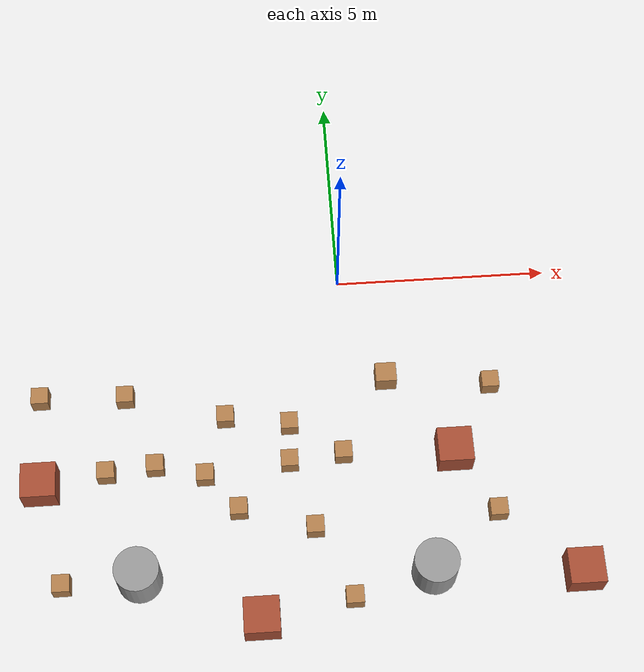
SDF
<sdf version="1.6">
 <world name="default">
  <model name="ground_plane">
   <static>1</static>
   <link name="link">
    <collision name="collision">
     <geometry><plane><normal>0 0 1</normal><size>100 100</size></plane></geometry>
     <surface><friction><ode><mu>100</mu><mu2>50</mu2></ode></friction></surface>
    </collision>
    <visual name="visual">
     <cast_shadows>0</cast_shadows>
     <geometry><plane><normal>0 0 1</normal><size>100 100</size></plane></geometry>
     <material>
      <script><uri>file://media/materials/scripts/gazebo.material</uri><name>Gazebo/White</name></script>
     </material>
    </visual>
   </link>
  </model>
  <model name="Box_12">
   <link name="link">
    <inertial>
     <mass>0.01</mass>
     <inertia>
      <ixx>0.00455697</ixx>
      <ixy>0</ixy>
      <ixz>0</ixz>
      <iyy>0.00475558</iyy>
      <iyz>0</iyz>
      <izz>0.00426137</izz>
     </inertia>
    </inertial>
    <visual name="visual">
     <geometry><box><size>0.483208 0.461193 0.514245</size></box></geometry>
     <material>
      <script><name>Gazebo/WoodFloor</name><uri>file://media/materials/scripts/gazebo.material</uri></script>
      <ambient>0.3 0.3 0.3 1</ambient>
      <diffuse>0.7 0.7 0.7 1</diffuse>
      <specular>0.01 0.01 0.01 1</specular>
      <emissive>0 0 0 1</emissive>
     </material>
    </visual>
    <collision name="collision">
     <geometry><box><size>0.483208 0.461193 0.514245</size></box></geometry>
     <surface>
      <friction>
       <ode><mu>1</mu><mu2>1</mu2><fdir1>0 0 0</fdir1><slip1>0</slip1><slip2>0</slip2></ode>
       <torsional>
        <coefficient>1</coefficient>
        <patch_radius>0</patch_radius>
        <surface_radius>0</surface_radius>
        <use_patch_radius>1</use_patch_radius>
        <ode><slip>0</slip></ode>
       </torsional>
      </friction>
      <bounce><restitution_coefficient>0</restitution_coefficient><threshold>1e+06</threshold></bounce>
      <contact>
       <collide_without_contact>0</collide_without_contact>
       <collide_without_contact_bitmask>1</collide_without_contact_bitmask>
       <collide_bitmask>1</collide_bitmask>
       <ode>
        <soft_cfm>0</soft_cfm>
        <soft_erp>0.2</soft_erp>
        <kp>1e+13</kp>
        <kd>1</kd>
        <max_vel>0.01</max_vel>
        <min_depth>0</min_depth>
       </ode>
       <bullet>
        <split_impulse>1</split_impulse>
        <split_impulse_penetration_threshold>-0.01</split_impulse_penetration_threshold>
        <soft_cfm>0</soft_cfm>
        <soft_erp>0.2</soft_erp>
        <kp>1e+13</kp>
        <kd>1</kd>
       </bullet>
      </contact>
     </surface>
    </collision>
   </link>
   <static>0</static>
   <pose>0.94074 -2.59055 0.257122 0 -0 0</pose>
  </model>
  <model name="HighRock_0">
   <link name="link_0">
    <inertial>
     <mass>5</mass>
     <inertia><ixx>0.145833</ixx><ixy>0</ixy><ixz>0</ixz><iyy>0.145833</iyy><iyz>0</iyz><izz>0.125</izz></inertia>
    </inertial>
    <visual name="visual">
     <geometry><cylinder><radius>0.5</radius><length>1</length></cylinder></geometry>
     <material>
      <lighting>1</lighting>
      <script><uri>file://media/materials/scripts/gazebo.material</uri><name>Gazebo/Gray</name></script>
      <ambient>0.3 0.3 0.3 1</ambient>
      <diffuse>0.7 0.7 0.7 1</diffuse>
      <specular>0.01 0.01 0.01 1</specular>
      <emissive>0 0 0 1</emissive>
     </material>
    </visual>
    <collision name="collision">
     <geometry><cylinder><radius>0.5</radius><length>1</length></cylinder></geometry>
     <surface>
      <friction>
       <ode><mu>1</mu><mu2>1</mu2><fdir1>0 0 0</fdir1><slip1>0</slip1><slip2>0</slip2></ode>
       <torsional>
        <coefficient>1</coefficient>
        <patch_radius>0</patch_radius>
        <surface_radius>0</surface_radius>
        <use_patch_radius>1</use_patch_radius>
        <ode><slip>0</slip></ode>
       </torsional>
      </friction>
      <bounce><restitution_coefficient>0</restitution_coefficient><threshold>1e+06</threshold></bounce>
      <contact>
       <collide_without_contact>0</collide_without_contact>
       <collide_without_contact_bitmask>1</collide_without_contact_bitmask>
       <collide_bitmask>1</collide_bitmask>
       <ode>
        <soft_cfm>0</soft_cfm>
        <soft_erp>0.2</soft_erp>
        <kp>1e+13</kp>
        <kd>1</kd>
        <max_vel>0.01</max_vel>
        <min_depth>0</min_depth>
       </ode>
       <bullet>
        <split_impulse>1</split_impulse>
        <split_impulse_penetration_threshold>-0.01</split_impulse_penetration_threshold>
        <soft_cfm>0</soft_cfm>
        <soft_erp>0.2</soft_erp>
        <kp>1e+13</kp>
        <kd>1</kd>
       </bullet>
      </contact>
     </surface>
    </collision>
   </link>
   <static>0</static>
   <pose>-4.85571 -7.06658 0.499999 1e-06 -0 -5e-06</pose>
  </model>
  <model name="HighRock_2">
   <link name="link_0">
    <inertial>
     <mass>5</mass>
     <inertia><ixx>0.145833</ixx><ixy>0</ixy><ixz>0</ixz><iyy>0.145833</iyy><iyz>0</iyz><izz>0.125</izz></inertia>
    </inertial>
    <visual name="visual">
     <geometry><cylinder><radius>0.5</radius><length>1</length></cylinder></geometry>
     <material>
      <lighting>1</lighting>
      <script><uri>file://media/materials/scripts/gazebo.material</uri><name>Gazebo/Gray</name></script>
      <ambient>0.3 0.3 0.3 1</ambient>
      <diffuse>0.7 0.7 0.7 1</diffuse>
      <specular>0.01 0.01 0.01 1</specular>
      <emissive>0 0 0 1</emissive>
     </material>
    </visual>
    <collision name="collision">
     <geometry><cylinder><radius>0.5</radius><length>1</length></cylinder></geometry>
     <surface>
      <friction>
       <ode><mu>1</mu><mu2>1</mu2><fdir1>0 0 0</fdir1><slip1>0</slip1><slip2>0</slip2></ode>
       <torsional>
        <coefficient>1</coefficient>
        <patch_radius>0</patch_radius>
        <surface_radius>0</surface_radius>
        <use_patch_radius>1</use_patch_radius>
        <ode><slip>0</slip></ode>
       </torsional>
      </friction>
      <bounce><restitution_coefficient>0</restitution_coefficient><threshold>1e+06</threshold></bounce>
      <contact>
       <collide_without_contact>0</collide_without_contact>
       <collide_without_contact_bitmask>1</collide_without_contact_bitmask>
       <collide_bitmask>1</collide_bitmask>
       <ode>
        <soft_cfm>0</soft_cfm>
        <soft_erp>0.2</soft_erp>
        <kp>1e+13</kp>
        <kd>1</kd>
        <max_vel>0.01</max_vel>
        <min_depth>0</min_depth>
       </ode>
       <bullet>
        <split_impulse>1</split_impulse>
        <split_impulse_penetration_threshold>-0.01</split_impulse_penetration_threshold>
        <soft_cfm>0</soft_cfm>
        <soft_erp>0.2</soft_erp>
        <kp>1e+13</kp>
        <kd>1</kd>
       </bullet>
      </contact>
     </surface>
    </collision>
   </link>
   <static>0</static>
   <pose>1.64025 -7.28401 0.499999 1e-06 -0 -5e-06</pose>
  </model>
  <model name="HeavyBox_0">
   <link name="link">
    <inertial>
     <mass>2</mass>
     <inertia>
      <ixx>0.0402452</ixx>
      <ixy>0</ixy>
      <ixz>0</ixz>
      <iyy>0.0399236</iyy>
      <iyz>0</iyz>
      <izz>0.0461707</izz>
     </inertia>
    </inertial>
    <visual name="visual">
     <geometry><box><size>0.79482 0.800386 0.684447</size></box></geometry>
     <material>
      <script><name>Gazebo/Bricks</name><uri>file://media/materials/scripts/gazebo.material</uri></script>
      <ambient>0.3 0.3 0.3 1</ambient>
      <diffuse>0.7 0.7 0.7 1</diffuse>
      <specular>0.01 0.01 0.01 1</specular>
      <emissive>0 0 0 1</emissive>
     </material>
    </visual>
    <collision name="collision">
     <geometry><box><size>0.79482 0.800386 0.684447</size></box></geometry>
     <surface>
      <friction>
       <ode><mu>1</mu><mu2>1</mu2><fdir1>0 0 0</fdir1><slip1>0</slip1><slip2>0</slip2></ode>
       <torsional>
        <coefficient>1</coefficient>
        <patch_radius>0</patch_radius>
        <surface_radius>0</surface_radius>
        <use_patch_radius>1</use_patch_radius>
        <ode><slip>0</slip></ode>
       </torsional>
      </friction>
      <bounce><restitution_coefficient>0</restitution_coefficient><threshold>1e+06</threshold></bounce>
      <contact>
       <collide_without_contact>0</collide_without_contact>
       <collide_without_contact_bitmask>1</collide_without_contact_bitmask>
       <collide_bitmask>1</collide_bitmask>
       <ode>
        <soft_cfm>0</soft_cfm>
        <soft_erp>0.2</soft_erp>
        <kp>1e+13</kp>
        <kd>1</kd>
        <max_vel>0.01</max_vel>
        <min_depth>0</min_depth>
       </ode>
       <bullet>
        <split_impulse>1</split_impulse>
        <split_impulse_penetration_threshold>-0.01</split_impulse_penetration_threshold>
        <soft_cfm>0</soft_cfm>
        <soft_erp>0.2</soft_erp>
        <kp>1e+13</kp>
        <kd>1</kd>
       </bullet>
      </contact>
     </surface>
    </collision>
   </link>
   <static>0</static>
   <pose>-7.0534 -4.78559 0.342219 -0 1.1e-05 -3e-05</pose>
  </model>
  <model name="HeavyBox_1">
   <link name="link">
    <inertial>
     <mass>2</mass>
     <inertia>
      <ixx>0.0402452</ixx>
      <ixy>0</ixy>
      <ixz>0</ixz>
      <iyy>0.0399236</iyy>
      <iyz>0</iyz>
      <izz>0.0461707</izz>
     </inertia>
    </inertial>
    <visual name="visual">
     <geometry><box><size>0.79482 0.800386 0.684447</size></box></geometry>
     <material>
      <script><name>Gazebo/Bricks</name><uri>file://media/materials/scripts/gazebo.material</uri></script>
      <ambient>0.3 0.3 0.3 1</ambient>
      <diffuse>0.7 0.7 0.7 1</diffuse>
      <specular>0.01 0.01 0.01 1</specular>
      <emissive>0 0 0 1</emissive>
     </material>
    </visual>
    <collision name="collision">
     <geometry><box><size>0.79482 0.800386 0.684447</size></box></geometry>
     <surface>
      <friction>
       <ode><mu>1</mu><mu2>1</mu2><fdir1>0 0 0</fdir1><slip1>0</slip1><slip2>0</slip2></ode>
       <torsional>
        <coefficient>1</coefficient>
        <patch_radius>0</patch_radius>
        <surface_radius>0</surface_radius>
        <use_patch_radius>1</use_patch_radius>
        <ode><slip>0</slip></ode>
       </torsional>
      </friction>
      <bounce><restitution_coefficient>0</restitution_coefficient><threshold>1e+06</threshold></bounce>
      <contact>
       <collide_without_contact>0</collide_without_contact>
       <collide_without_contact_bitmask>1</collide_without_contact_bitmask>
       <collide_bitmask>1</collide_bitmask>
       <ode>
        <soft_cfm>0</soft_cfm>
        <soft_erp>0.2</soft_erp>
        <kp>1e+13</kp>
        <kd>1</kd>
        <max_vel>0.01</max_vel>
        <min_depth>0</min_depth>
       </ode>
       <bullet>
        <split_impulse>1</split_impulse>
        <split_impulse_penetration_threshold>-0.01</split_impulse_penetration_threshold>
        <soft_cfm>0</soft_cfm>
        <soft_erp>0.2</soft_erp>
        <kp>1e+13</kp>
        <kd>1</kd>
       </bullet>
      </contact>
     </surface>
    </collision>
   </link>
   <static>0</static>
   <pose>4.91472 -7.50684 0.342219 -0 -1.1e-05 0.000203</pose>
  </model>
  <model name="Box_17">
   <link name="link_0">
    <inertial>
     <mass>0.01</mass>
     <inertia>
      <ixx>0.00187998</ixx>
      <ixy>0</ixy>
      <ixz>0</ixz>
      <iyy>0.00189171</iyy>
      <iyz>0</iyz>
      <izz>0.0017286</izz>
     </inertia>
    </inertial>
    <visual name="visual">
     <geometry><box><size>0.39572 0.393033 0.428759</size></box></geometry>
     <material>
      <lighting>1</lighting>
      <script><uri>file://media/materials/scripts/gazebo.material</uri><name>Gazebo/WoodFloor</name></script>
      <ambient>0.3 0.3 0.3 1</ambient>
      <diffuse>0.7 0.7 0.7 1</diffuse>
      <specular>0.01 0.01 0.01 1</specular>
      <emissive>0 0 0 1</emissive>
     </material>
    </visual>
    <collision name="collision">
     <geometry><box><size>0.39572 0.393033 0.428759</size></box></geometry>
     <surface>
      <friction>
       <ode><mu>1</mu><mu2>1</mu2><fdir1>0 0 0</fdir1><slip1>0</slip1><slip2>0</slip2></ode>
       <torsional>
        <coefficient>1</coefficient>
        <patch_radius>0</patch_radius>
        <surface_radius>0</surface_radius>
        <use_patch_radius>1</use_patch_radius>
        <ode><slip>0</slip></ode>
       </torsional>
      </friction>
      <bounce><restitution_coefficient>0</restitution_coefficient><threshold>1e+06</threshold></bounce>
      <contact>
       <collide_without_contact>0</collide_without_contact>
       <collide_without_contact_bitmask>1</collide_without_contact_bitmask>
       <collide_bitmask>1</collide_bitmask>
       <ode>
        <soft_cfm>0</soft_cfm>
        <soft_erp>0.2</soft_erp>
        <kp>1e+13</kp>
        <kd>1</kd>
        <max_vel>0.01</max_vel>
        <min_depth>0</min_depth>
       </ode>
       <bullet>
        <split_impulse>1</split_impulse>
        <split_impulse_penetration_threshold>-0.01</split_impulse_penetration_threshold>
        <soft_cfm>0</soft_cfm>
        <soft_erp>0.2</soft_erp>
        <kp>1e+13</kp>
        <kd>1</kd>
       </bullet>
      </contact>
     </surface>
    </collision>
   </link>
   <static>0</static>
   <pose>3.34395 -2.88925 0.257122 0 -0 0</pose>
  </model>
  <model name="HeavyBox_8">
   <link name="link">
    <inertial>
     <mass>2</mass>
     <inertia>
      <ixx>0.0402452</ixx>
      <ixy>0</ixy>
      <ixz>0</ixz>
      <iyy>0.0399236</iyy>
      <iyz>0</iyz>
      <izz>0.0461707</izz>
     </inertia>
    </inertial>
    <visual name="visual">
     <geometry><box><size>0.79482 0.800386 0.684447</size></box></geometry>
     <material>
      <script><name>Gazebo/Bricks</name><uri>file://media/materials/scripts/gazebo.material</uri></script>
      <ambient>0.3 0.3 0.3 1</ambient>
      <diffuse>0.7 0.7 0.7 1</diffuse>
      <specular>0.01 0.01 0.01 1</specular>
      <emissive>0 0 0 1</emissive>
     </material>
    </visual>
    <collision name="collision">
     <geometry><box><size>0.79482 0.800386 0.684447</size></box></geometry>
     <surface>
      <friction>
       <ode><mu>1</mu><mu2>1</mu2><fdir1>0 0 0</fdir1><slip1>0</slip1><slip2>0</slip2></ode>
       <torsional>
        <coefficient>1</coefficient>
        <patch_radius>0</patch_radius>
        <surface_radius>0</surface_radius>
        <use_patch_radius>1</use_patch_radius>
        <ode><slip>0</slip></ode>
       </torsional>
      </friction>
      <bounce><restitution_coefficient>0</restitution_coefficient><threshold>1e+06</threshold></bounce>
      <contact>
       <collide_without_contact>0</collide_without_contact>
       <collide_without_contact_bitmask>1</collide_without_contact_bitmask>
       <collide_bitmask>1</collide_bitmask>
       <ode>
        <soft_cfm>0</soft_cfm>
        <soft_erp>0.2</soft_erp>
        <kp>1e+13</kp>
        <kd>1</kd>
        <max_vel>0.01</max_vel>
        <min_depth>0</min_depth>
       </ode>
       <bullet>
        <split_impulse>1</split_impulse>
        <split_impulse_penetration_threshold>-0.01</split_impulse_penetration_threshold>
        <soft_cfm>0</soft_cfm>
        <soft_erp>0.2</soft_erp>
        <kp>1e+13</kp>
        <kd>1</kd>
       </bullet>
      </contact>
     </surface>
    </collision>
   </link>
   <static>0</static>
   <pose>2.35108 -4.52411 0.342219 0 -1.1e-05 0.000265</pose>
  </model>
  <model name="HeavyBox_9">
   <link name="link">
    <inertial>
     <mass>2</mass>
     <inertia>
      <ixx>0.0402452</ixx>
      <ixy>0</ixy>
      <ixz>0</ixz>
      <iyy>0.0399236</iyy>
      <iyz>0</iyz>
      <izz>0.0461707</izz>
     </inertia>
    </inertial>
    <visual name="visual">
     <geometry><box><size>0.79482 0.800386 0.684447</size></box></geometry>
     <material>
      <script><name>Gazebo/Bricks</name><uri>file://media/materials/scripts/gazebo.material</uri></script>
      <ambient>0.3 0.3 0.3 1</ambient>
      <diffuse>0.7 0.7 0.7 1</diffuse>
      <specular>0.01 0.01 0.01 1</specular>
      <emissive>0 0 0 1</emissive>
     </material>
    </visual>
    <collision name="collision">
     <geometry><box><size>0.79482 0.800386 0.684447</size></box></geometry>
     <surface>
      <friction>
       <ode><mu>1</mu><mu2>1</mu2><fdir1>0 0 0</fdir1><slip1>0</slip1><slip2>0</slip2></ode>
       <torsional>
        <coefficient>1</coefficient>
        <patch_radius>0</patch_radius>
        <surface_radius>0</surface_radius>
        <use_patch_radius>1</use_patch_radius>
        <ode><slip>0</slip></ode>
       </torsional>
      </friction>
      <bounce><restitution_coefficient>0</restitution_coefficient><threshold>1e+06</threshold></bounce>
      <contact>
       <collide_without_contact>0</collide_without_contact>
       <collide_without_contact_bitmask>1</collide_without_contact_bitmask>
       <collide_bitmask>1</collide_bitmask>
       <ode>
        <soft_cfm>0</soft_cfm>
        <soft_erp>0.2</soft_erp>
        <kp>1e+13</kp>
        <kd>1</kd>
        <max_vel>0.01</max_vel>
        <min_depth>0</min_depth>
       </ode>
       <bullet>
        <split_impulse>1</split_impulse>
        <split_impulse_penetration_threshold>-0.01</split_impulse_penetration_threshold>
        <soft_cfm>0</soft_cfm>
        <soft_erp>0.2</soft_erp>
        <kp>1e+13</kp>
        <kd>1</kd>
       </bullet>
      </contact>
     </surface>
    </collision>
   </link>
   <static>0</static>
   <pose>-2.20656 -8.14682 0.342219 0 1.1e-05 0.000309</pose>
  </model>
  <model name="Box_20">
   <link name="link_0">
    <inertial>
     <mass>0.01</mass>
     <inertia>
      <ixx>0.00187998</ixx>
      <ixy>0</ixy>
      <ixz>0</ixz>
      <iyy>0.00189171</iyy>
      <iyz>0</iyz>
      <izz>0.0017286</izz>
     </inertia>
    </inertial>
    <visual name="visual">
     <geometry><box><size>0.39572 0.393033 0.428759</size></box></geometry>
     <material>
      <lighting>1</lighting>
      <script><uri>file://media/materials/scripts/gazebo.material</uri><name>Gazebo/WoodFloor</name></script>
      <ambient>0.3 0.3 0.3 1</ambient>
      <diffuse>0.7 0.7 0.7 1</diffuse>
      <specular>0.01 0.01 0.01 1</specular>
      <emissive>0 0 0 1</emissive>
     </material>
    </visual>
    <collision name="collision">
     <geometry><box><size>0.39572 0.393033 0.428759</size></box></geometry>
     <surface>
      <friction>
       <ode><mu>1</mu><mu2>1</mu2><fdir1>0 0 0</fdir1><slip1>0</slip1><slip2>0</slip2></ode>
       <torsional>
        <coefficient>1</coefficient>
        <patch_radius>0</patch_radius>
        <surface_radius>0</surface_radius>
        <use_patch_radius>1</use_patch_radius>
        <ode><slip>0</slip></ode>
       </torsional>
      </friction>
      <bounce><restitution_coefficient>0</restitution_coefficient><threshold>1e+06</threshold></bounce>
      <contact>
       <collide_without_contact>0</collide_without_contact>
       <collide_without_contact_bitmask>1</collide_without_contact_bitmask>
       <collide_bitmask>1</collide_bitmask>
       <ode>
        <soft_cfm>0</soft_cfm>
        <soft_erp>0.2</soft_erp>
        <kp>1e+13</kp>
        <kd>1</kd>
        <max_vel>0.01</max_vel>
        <min_depth>0</min_depth>
       </ode>
       <bullet>
        <split_impulse>1</split_impulse>
        <split_impulse_penetration_threshold>-0.01</split_impulse_penetration_threshold>
        <soft_cfm>0</soft_cfm>
        <soft_erp>0.2</soft_erp>
        <kp>1e+13</kp>
        <kd>1</kd>
       </bullet>
      </contact>
     </surface>
    </collision>
   </link>
   <static>0</static>
   <pose>-4.45761 -4.4653 0.257122 0 -0 0</pose>
  </model>
  <model name="Box_21">
   <link name="link_0">
    <inertial>
     <mass>0.01</mass>
     <inertia>
      <ixx>0.00187998</ixx>
      <ixy>0</ixy>
      <ixz>0</ixz>
      <iyy>0.00189171</iyy>
      <iyz>0</iyz>
      <izz>0.0017286</izz>
     </inertia>
    </inertial>
    <visual name="visual">
     <geometry><box><size>0.39572 0.393033 0.428759</size></box></geometry>
     <material>
      <lighting>1</lighting>
      <script><uri>file://media/materials/scripts/gazebo.material</uri><name>Gazebo/WoodFloor</name></script>
      <ambient>0.3 0.3 0.3 1</ambient>
      <diffuse>0.7 0.7 0.7 1</diffuse>
      <specular>0.01 0.01 0.01 1</specular>
      <emissive>0 0 0 1</emissive>
     </material>
    </visual>
    <collision name="collision">
     <geometry><box><size>0.39572 0.393033 0.428759</size></box></geometry>
     <surface>
      <friction>
       <ode><mu>1</mu><mu2>1</mu2><fdir1>0 0 0</fdir1><slip1>0</slip1><slip2>0</slip2></ode>
       <torsional>
        <coefficient>1</coefficient>
        <patch_radius>0</patch_radius>
        <surface_radius>0</surface_radius>
        <use_patch_radius>1</use_patch_radius>
        <ode><slip>0</slip></ode>
       </torsional>
      </friction>
      <bounce><restitution_coefficient>0</restitution_coefficient><threshold>1e+06</threshold></bounce>
      <contact>
       <collide_without_contact>0</collide_without_contact>
       <collide_without_contact_bitmask>1</collide_without_contact_bitmask>
       <collide_bitmask>1</collide_bitmask>
       <ode>
        <soft_cfm>0</soft_cfm>
        <soft_erp>0.2</soft_erp>
        <kp>1e+13</kp>
        <kd>1</kd>
        <max_vel>0.01</max_vel>
        <min_depth>0</min_depth>
       </ode>
       <bullet>
        <split_impulse>1</split_impulse>
        <split_impulse_penetration_threshold>-0.01</split_impulse_penetration_threshold>
        <soft_cfm>0</soft_cfm>
        <soft_erp>0.2</soft_erp>
        <kp>1e+13</kp>
        <kd>1</kd>
       </bullet>
      </contact>
     </surface>
    </collision>
   </link>
   <static>0</static>
   <pose>-6.55757 -7.12794 0.257122 0 -0 0</pose>
  </model>
  <model name="Box_23">
   <link name="link_0">
    <inertial>
     <mass>0.01</mass>
     <inertia>
      <ixx>0.00187998</ixx>
      <ixy>0</ixy>
      <ixz>0</ixz>
      <iyy>0.00189171</iyy>
      <iyz>0</iyz>
      <izz>0.0017286</izz>
     </inertia>
    </inertial>
    <visual name="visual">
     <geometry><box><size>0.39572 0.393033 0.428759</size></box></geometry>
     <material>
      <lighting>1</lighting>
      <script><uri>file://media/materials/scripts/gazebo.material</uri><name>Gazebo/WoodFloor</name></script>
      <ambient>0.3 0.3 0.3 1</ambient>
      <diffuse>0.7 0.7 0.7 1</diffuse>
      <specular>0.01 0.01 0.01 1</specular>
      <emissive>0 0 0 1</emissive>
     </material>
    </visual>
    <collision name="collision">
     <geometry><box><size>0.39572 0.393033 0.428759</size></box></geometry>
     <surface>
      <friction>
       <ode><mu>1</mu><mu2>1</mu2><fdir1>0 0 0</fdir1><slip1>0</slip1><slip2>0</slip2></ode>
       <torsional>
        <coefficient>1</coefficient>
        <patch_radius>0</patch_radius>
        <surface_radius>0</surface_radius>
        <use_patch_radius>1</use_patch_radius>
        <ode><slip>0</slip></ode>
       </torsional>
      </friction>
      <bounce><restitution_coefficient>0</restitution_coefficient><threshold>1e+06</threshold></bounce>
      <contact>
       <collide_without_contact>0</collide_without_contact>
       <collide_without_contact_bitmask>1</collide_without_contact_bitmask>
       <collide_bitmask>1</collide_bitmask>
       <ode>
        <soft_cfm>0</soft_cfm>
        <soft_erp>0.2</soft_erp>
        <kp>1e+13</kp>
        <kd>1</kd>
        <max_vel>0.01</max_vel>
        <min_depth>0</min_depth>
       </ode>
       <bullet>
        <split_impulse>1</split_impulse>
        <split_impulse_penetration_threshold>-0.01</split_impulse_penetration_threshold>
        <soft_cfm>0</soft_cfm>
        <soft_erp>0.2</soft_erp>
        <kp>1e+13</kp>
        <kd>1</kd>
       </bullet>
      </contact>
     </surface>
    </collision>
   </link>
   <static>0</static>
   <pose>-1.40729 -4.53877 0.257122 0 -0 0</pose>
  </model>
  <model name="Box_24">
   <link name="link_0">
    <inertial>
     <mass>0.01</mass>
     <inertia>
      <ixx>0.00187998</ixx>
      <ixy>0</ixy>
      <ixz>0</ixz>
      <iyy>0.00189171</iyy>
      <iyz>0</iyz>
      <izz>0.0017286</izz>
     </inertia>
    </inertial>
    <visual name="visual">
     <geometry><box><size>0.39572 0.393033 0.428759</size></box></geometry>
     <material>
      <lighting>1</lighting>
      <script><uri>file://media/materials/scripts/gazebo.material</uri><name>Gazebo/WoodFloor</name></script>
      <ambient>0.3 0.3 0.3 1</ambient>
      <diffuse>0.7 0.7 0.7 1</diffuse>
      <specular>0.01 0.01 0.01 1</specular>
      <emissive>0 0 0 1</emissive>
     </material>
    </visual>
    <collision name="collision">
     <geometry><box><size>0.39572 0.393033 0.428759</size></box></geometry>
     <surface>
      <friction>
       <ode><mu>1</mu><mu2>1</mu2><fdir1>0 0 0</fdir1><slip1>0</slip1><slip2>0</slip2></ode>
       <torsional>
        <coefficient>1</coefficient>
        <patch_radius>0</patch_radius>
        <surface_radius>0</surface_radius>
        <use_patch_radius>1</use_patch_radius>
        <ode><slip>0</slip></ode>
       </torsional>
      </friction>
      <bounce><restitution_coefficient>0</restitution_coefficient><threshold>1e+06</threshold></bounce>
      <contact>
       <collide_without_contact>0</collide_without_contact>
       <collide_without_contact_bitmask>1</collide_without_contact_bitmask>
       <collide_bitmask>1</collide_bitmask>
       <ode>
        <soft_cfm>0</soft_cfm>
        <soft_erp>0.2</soft_erp>
        <kp>1e+13</kp>
        <kd>1</kd>
        <max_vel>0.01</max_vel>
        <min_depth>0</min_depth>
       </ode>
       <bullet>
        <split_impulse>1</split_impulse>
        <split_impulse_penetration_threshold>-0.01</split_impulse_penetration_threshold>
        <soft_cfm>0</soft_cfm>
        <soft_erp>0.2</soft_erp>
        <kp>1e+13</kp>
        <kd>1</kd>
       </bullet>
      </contact>
     </surface>
    </collision>
   </link>
   <static>0</static>
   <pose>-2.60682 -5.60405 0.257122 0 -0 0</pose>
  </model>
  <model name="Box_25">
   <link name="link_0">
    <inertial>
     <mass>0.01</mass>
     <inertia>
      <ixx>0.00187998</ixx>
      <ixy>0</ixy>
      <ixz>0</ixz>
      <iyy>0.00189171</iyy>
      <iyz>0</iyz>
      <izz>0.0017286</izz>
     </inertia>
    </inertial>
    <visual name="visual">
     <geometry><box><size>0.39572 0.393033 0.428759</size></box></geometry>
     <material>
      <lighting>1</lighting>
      <script><uri>file://media/materials/scripts/gazebo.material</uri><name>Gazebo/WoodFloor</name></script>
      <ambient>0.3 0.3 0.3 1</ambient>
      <diffuse>0.7 0.7 0.7 1</diffuse>
      <specular>0.01 0.01 0.01 1</specular>
      <emissive>0 0 0 1</emissive>
     </material>
    </visual>
    <collision name="collision">
     <geometry><box><size>0.39572 0.393033 0.428759</size></box></geometry>
     <surface>
      <friction>
       <ode><mu>1</mu><mu2>1</mu2><fdir1>0 0 0</fdir1><slip1>0</slip1><slip2>0</slip2></ode>
       <torsional>
        <coefficient>1</coefficient>
        <patch_radius>0</patch_radius>
        <surface_radius>0</surface_radius>
        <use_patch_radius>1</use_patch_radius>
        <ode><slip>0</slip></ode>
       </torsional>
      </friction>
      <bounce><restitution_coefficient>0</restitution_coefficient><threshold>1e+06</threshold></bounce>
      <contact>
       <collide_without_contact>0</collide_without_contact>
       <collide_without_contact_bitmask>1</collide_without_contact_bitmask>
       <collide_bitmask>1</collide_bitmask>
       <ode>
        <soft_cfm>0</soft_cfm>
        <soft_erp>0.2</soft_erp>
        <kp>1e+13</kp>
        <kd>1</kd>
        <max_vel>0.01</max_vel>
        <min_depth>0</min_depth>
       </ode>
       <bullet>
        <split_impulse>1</split_impulse>
        <split_impulse_penetration_threshold>-0.01</split_impulse_penetration_threshold>
        <soft_cfm>0</soft_cfm>
        <soft_erp>0.2</soft_erp>
        <kp>1e+13</kp>
        <kd>1</kd>
       </bullet>
      </contact>
     </surface>
    </collision>
   </link>
   <static>0</static>
   <pose>-2.82444 -3.37471 0.257122 0 -0 0</pose>
  </model>
  <model name="Box_26">
   <link name="link_0">
    <inertial>
     <mass>0.01</mass>
     <inertia>
      <ixx>0.00187998</ixx>
      <ixy>0</ixy>
      <ixz>0</ixz>
      <iyy>0.00189171</iyy>
      <iyz>0</iyz>
      <izz>0.0017286</izz>
     </inertia>
    </inertial>
    <visual name="visual">
     <geometry><box><size>0.39572 0.393033 0.428759</size></box></geometry>
     <material>
      <lighting>1</lighting>
      <script><uri>file://media/materials/scripts/gazebo.material</uri><name>Gazebo/WoodFloor</name></script>
      <ambient>0.3 0.3 0.3 1</ambient>
      <diffuse>0.7 0.7 0.7 1</diffuse>
      <specular>0.01 0.01 0.01 1</specular>
      <emissive>0 0 0 1</emissive>
     </material>
    </visual>
    <collision name="collision">
     <geometry><box><size>0.39572 0.393033 0.428759</size></box></geometry>
     <surface>
      <friction>
       <ode><mu>1</mu><mu2>1</mu2><fdir1>0 0 0</fdir1><slip1>0</slip1><slip2>0</slip2></ode>
       <torsional>
        <coefficient>1</coefficient>
        <patch_radius>0</patch_radius>
        <surface_radius>0</surface_radius>
        <use_patch_radius>1</use_patch_radius>
        <ode><slip>0</slip></ode>
       </torsional>
      </friction>
      <bounce><restitution_coefficient>0</restitution_coefficient><threshold>1e+06</threshold></bounce>
      <contact>
       <collide_without_contact>0</collide_without_contact>
       <collide_without_contact_bitmask>1</collide_without_contact_bitmask>
       <collide_bitmask>1</collide_bitmask>
       <ode>
        <soft_cfm>0</soft_cfm>
        <soft_erp>0.2</soft_erp>
        <kp>1e+13</kp>
        <kd>1</kd>
        <max_vel>0.01</max_vel>
        <min_depth>0</min_depth>
       </ode>
       <bullet>
        <split_impulse>1</split_impulse>
        <split_impulse_penetration_threshold>-0.01</split_impulse_penetration_threshold>
        <soft_cfm>0</soft_cfm>
        <soft_erp>0.2</soft_erp>
        <kp>1e+13</kp>
        <kd>1</kd>
       </bullet>
      </contact>
     </surface>
    </collision>
   </link>
   <static>0</static>
   <pose>-0.920713 -6.13009 0.257122 0 -0 0</pose>
  </model>
  <model name="Box_27">
   <link name="link_0">
    <inertial>
     <mass>0.01</mass>
     <inertia>
      <ixx>0.00187998</ixx>
      <ixy>0</ixy>
      <ixz>0</ixz>
      <iyy>0.00189171</iyy>
      <iyz>0</iyz>
      <izz>0.0017286</izz>
     </inertia>
    </inertial>
    <visual name="visual">
     <geometry><box><size>0.39572 0.393033 0.428759</size></box></geometry>
     <material>
      <lighting>1</lighting>
      <script><uri>file://media/materials/scripts/gazebo.material</uri><name>Gazebo/WoodFloor</name></script>
      <ambient>0.3 0.3 0.3 1</ambient>
      <diffuse>0.7 0.7 0.7 1</diffuse>
      <specular>0.01 0.01 0.01 1</specular>
      <emissive>0 0 0 1</emissive>
     </material>
    </visual>
    <collision name="collision">
     <geometry><box><size>0.39572 0.393033 0.428759</size></box></geometry>
     <surface>
      <friction>
       <ode><mu>1</mu><mu2>1</mu2><fdir1>0 0 0</fdir1><slip1>0</slip1><slip2>0</slip2></ode>
       <torsional>
        <coefficient>1</coefficient>
        <patch_radius>0</patch_radius>
        <surface_radius>0</surface_radius>
        <use_patch_radius>1</use_patch_radius>
        <ode><slip>0</slip></ode>
       </torsional>
      </friction>
      <bounce><restitution_coefficient>0</restitution_coefficient><threshold>1e+06</threshold></bounce>
      <contact>
       <collide_without_contact>0</collide_without_contact>
       <collide_without_contact_bitmask>1</collide_without_contact_bitmask>
       <collide_bitmask>1</collide_bitmask>
       <ode>
        <soft_cfm>0</soft_cfm>
        <soft_erp>0.2</soft_erp>
        <kp>1e+13</kp>
        <kd>1</kd>
        <max_vel>0.01</max_vel>
        <min_depth>0</min_depth>
       </ode>
       <bullet>
        <split_impulse>1</split_impulse>
        <split_impulse_penetration_threshold>-0.01</split_impulse_penetration_threshold>
        <soft_cfm>0</soft_cfm>
        <soft_erp>0.2</soft_erp>
        <kp>1e+13</kp>
        <kd>1</kd>
       </bullet>
      </contact>
     </surface>
    </collision>
   </link>
   <static>0</static>
   <pose>-0.17173 -4.41079 0.257122 0 -0 0</pose>
  </model>
  <model name="Box_28">
   <link name="link_0">
    <inertial>
     <mass>0.01</mass>
     <inertia>
      <ixx>0.00187998</ixx>
      <ixy>0</ixy>
      <ixz>0</ixz>
      <iyy>0.00189171</iyy>
      <iyz>0</iyz>
      <izz>0.0017286</izz>
     </inertia>
    </inertial>
    <visual name="visual">
     <geometry><box><size>0.39572 0.393033 0.428759</size></box></geometry>
     <material>
      <lighting>1</lighting>
      <script><uri>file://media/materials/scripts/gazebo.material</uri><name>Gazebo/WoodFloor</name></script>
      <ambient>0.3 0.3 0.3 1</ambient>
      <diffuse>0.7 0.7 0.7 1</diffuse>
      <specular>0.01 0.01 0.01 1</specular>
      <emissive>0 0 0 1</emissive>
     </material>
    </visual>
    <collision name="collision">
     <geometry><box><size>0.39572 0.393033 0.428759</size></box></geometry>
     <surface>
      <friction>
       <ode><mu>1</mu><mu2>1</mu2><fdir1>0 0 0</fdir1><slip1>0</slip1><slip2>0</slip2></ode>
       <torsional>
        <coefficient>1</coefficient>
        <patch_radius>0</patch_radius>
        <surface_radius>0</surface_radius>
        <use_patch_radius>1</use_patch_radius>
        <ode><slip>0</slip></ode>
       </torsional>
      </friction>
      <bounce><restitution_coefficient>0</restitution_coefficient><threshold>1e+06</threshold></bounce>
      <contact>
       <collide_without_contact>0</collide_without_contact>
       <collide_without_contact_bitmask>1</collide_without_contact_bitmask>
       <collide_bitmask>1</collide_bitmask>
       <ode>
        <soft_cfm>0</soft_cfm>
        <soft_erp>0.2</soft_erp>
        <kp>1e+13</kp>
        <kd>1</kd>
        <max_vel>0.01</max_vel>
        <min_depth>0</min_depth>
       </ode>
       <bullet>
        <split_impulse>1</split_impulse>
        <split_impulse_penetration_threshold>-0.01</split_impulse_penetration_threshold>
        <soft_cfm>0</soft_cfm>
        <soft_erp>0.2</soft_erp>
        <kp>1e+13</kp>
        <kd>1</kd>
       </bullet>
      </contact>
     </surface>
    </collision>
   </link>
   <static>0</static>
   <pose>-1.3633 -3.62923 0.257122 0 -0 0</pose>
  </model>
  <model name="Box_32">
   <link name="link_0">
    <inertial>
     <mass>0.01</mass>
     <inertia>
      <ixx>0.00187998</ixx>
      <ixy>0</ixy>
      <ixz>0</ixz>
      <iyy>0.00189171</iyy>
      <iyz>0</iyz>
      <izz>0.0017286</izz>
     </inertia>
    </inertial>
    <visual name="visual">
     <geometry><box><size>0.39572 0.393033 0.428759</size></box></geometry>
     <material>
      <lighting>1</lighting>
      <script><uri>file://media/materials/scripts/gazebo.material</uri><name>Gazebo/WoodFloor</name></script>
      <ambient>0.3 0.3 0.3 1</ambient>
      <diffuse>0.7 0.7 0.7 1</diffuse>
      <specular>0.01 0.01 0.01 1</specular>
      <emissive>0 0 0 1</emissive>
     </material>
    </visual>
    <collision name="collision">
     <geometry><box><size>0.39572 0.393033 0.428759</size></box></geometry>
     <surface>
      <friction>
       <ode><mu>1</mu><mu2>1</mu2><fdir1>0 0 0</fdir1><slip1>0</slip1><slip2>0</slip2></ode>
       <torsional>
        <coefficient>1</coefficient>
        <patch_radius>0</patch_radius>
        <surface_radius>0</surface_radius>
        <use_patch_radius>1</use_patch_radius>
        <ode><slip>0</slip></ode>
       </torsional>
      </friction>
      <bounce><restitution_coefficient>0</restitution_coefficient><threshold>1e+06</threshold></bounce>
      <contact>
       <collide_without_contact>0</collide_without_contact>
       <collide_without_contact_bitmask>1</collide_without_contact_bitmask>
       <collide_bitmask>1</collide_bitmask>
       <ode>
        <soft_cfm>0</soft_cfm>
        <soft_erp>0.2</soft_erp>
        <kp>1e+13</kp>
        <kd>1</kd>
        <max_vel>0.01</max_vel>
        <min_depth>0</min_depth>
       </ode>
       <bullet>
        <split_impulse>1</split_impulse>
        <split_impulse_penetration_threshold>-0.01</split_impulse_penetration_threshold>
        <soft_cfm>0</soft_cfm>
        <soft_erp>0.2</soft_erp>
        <kp>1e+13</kp>
        <kd>1</kd>
       </bullet>
      </contact>
     </surface>
    </collision>
   </link>
   <static>0</static>
   <pose>-3.33307 -4.7597 0.257122 0 -0 0</pose>
  </model>
  <model name="Box_33">
   <link name="link_0">
    <inertial>
     <mass>0.01</mass>
     <inertia>
      <ixx>0.00187998</ixx>
      <ixy>0</ixy>
      <ixz>0</ixz>
      <iyy>0.00189171</iyy>
      <iyz>0</iyz>
      <izz>0.0017286</izz>
     </inertia>
    </inertial>
    <visual name="visual">
     <geometry><box><size>0.39572 0.393033 0.428759</size></box></geometry>
     <material>
      <lighting>1</lighting>
      <script><uri>file://media/materials/scripts/gazebo.material</uri><name>Gazebo/WoodFloor</name></script>
      <ambient>0.3 0.3 0.3 1</ambient>
      <diffuse>0.7 0.7 0.7 1</diffuse>
      <specular>0.01 0.01 0.01 1</specular>
      <emissive>0 0 0 1</emissive>
     </material>
    </visual>
    <collision name="collision">
     <geometry><box><size>0.39572 0.393033 0.428759</size></box></geometry>
     <surface>
      <friction>
       <ode><mu>1</mu><mu2>1</mu2><fdir1>0 0 0</fdir1><slip1>0</slip1><slip2>0</slip2></ode>
       <torsional>
        <coefficient>1</coefficient>
        <patch_radius>0</patch_radius>
        <surface_radius>0</surface_radius>
        <use_patch_radius>1</use_patch_radius>
        <ode><slip>0</slip></ode>
       </torsional>
      </friction>
      <bounce><restitution_coefficient>0</restitution_coefficient><threshold>1e+06</threshold></bounce>
      <contact>
       <collide_without_contact>0</collide_without_contact>
       <collide_without_contact_bitmask>1</collide_without_contact_bitmask>
       <collide_bitmask>1</collide_bitmask>
       <ode>
        <soft_cfm>0</soft_cfm>
        <soft_erp>0.2</soft_erp>
        <kp>1e+13</kp>
        <kd>1</kd>
        <max_vel>0.01</max_vel>
        <min_depth>0</min_depth>
       </ode>
       <bullet>
        <split_impulse>1</split_impulse>
        <split_impulse_penetration_threshold>-0.01</split_impulse_penetration_threshold>
        <soft_cfm>0</soft_cfm>
        <soft_erp>0.2</soft_erp>
        <kp>1e+13</kp>
        <kd>1</kd>
       </bullet>
      </contact>
     </surface>
    </collision>
   </link>
   <static>0</static>
   <pose>-5.11873 -2.74535 0.257122 0 -0 0</pose>
  </model>
  <model name="Box_34">
   <link name="link_0">
    <inertial>
     <mass>0.01</mass>
     <inertia>
      <ixx>0.00187998</ixx>
      <ixy>0</ixy>
      <ixz>0</ixz>
      <iyy>0.00189171</iyy>
      <iyz>0</iyz>
      <izz>0.0017286</izz>
     </inertia>
    </inertial>
    <visual name="visual">
     <geometry><box><size>0.39572 0.393033 0.428759</size></box></geometry>
     <material>
      <lighting>1</lighting>
      <script><uri>file://media/materials/scripts/gazebo.material</uri><name>Gazebo/WoodFloor</name></script>
      <ambient>0.3 0.3 0.3 1</ambient>
      <diffuse>0.7 0.7 0.7 1</diffuse>
      <specular>0.01 0.01 0.01 1</specular>
      <emissive>0 0 0 1</emissive>
     </material>
    </visual>
    <collision name="collision">
     <geometry><box><size>0.39572 0.393033 0.428759</size></box></geometry>
     <surface>
      <friction>
       <ode><mu>1</mu><mu2>1</mu2><fdir1>0 0 0</fdir1><slip1>0</slip1><slip2>0</slip2></ode>
       <torsional>
        <coefficient>1</coefficient>
        <patch_radius>0</patch_radius>
        <surface_radius>0</surface_radius>
        <use_patch_radius>1</use_patch_radius>
        <ode><slip>0</slip></ode>
       </torsional>
      </friction>
      <bounce><restitution_coefficient>0</restitution_coefficient><threshold>1e+06</threshold></bounce>
      <contact>
       <collide_without_contact>0</collide_without_contact>
       <collide_without_contact_bitmask>1</collide_without_contact_bitmask>
       <collide_bitmask>1</collide_bitmask>
       <ode>
        <soft_cfm>0</soft_cfm>
        <soft_erp>0.2</soft_erp>
        <kp>1e+13</kp>
        <kd>1</kd>
        <max_vel>0.01</max_vel>
        <min_depth>0</min_depth>
       </ode>
       <bullet>
        <split_impulse>1</split_impulse>
        <split_impulse_penetration_threshold>-0.01</split_impulse_penetration_threshold>
        <soft_cfm>0</soft_cfm>
        <soft_erp>0.2</soft_erp>
        <kp>1e+13</kp>
        <kd>1</kd>
       </bullet>
      </contact>
     </surface>
    </collision>
   </link>
   <static>0</static>
   <pose>-5.56972 -4.57156 0.257122 0 -0 0</pose>
  </model>
  <model name="Box_40">
   <link name="link_0">
    <inertial>
     <mass>0.01</mass>
     <inertia>
      <ixx>0.00187998</ixx>
      <ixy>0</ixy>
      <ixz>0</ixz>
      <iyy>0.00189171</iyy>
      <iyz>0</iyz>
      <izz>0.0017286</izz>
     </inertia>
    </inertial>
    <visual name="visual">
     <geometry><box><size>0.39572 0.393033 0.428759</size></box></geometry>
     <material>
      <lighting>1</lighting>
      <script><uri>file://media/materials/scripts/gazebo.material</uri><name>Gazebo/WoodFloor</name></script>
      <ambient>0.3 0.3 0.3 1</ambient>
      <diffuse>0.7 0.7 0.7 1</diffuse>
      <specular>0.01 0.01 0.01 1</specular>
      <emissive>0 0 0 1</emissive>
     </material>
    </visual>
    <collision name="collision">
     <geometry><box><size>0.39572 0.393033 0.428759</size></box></geometry>
     <surface>
      <friction>
       <ode><mu>1</mu><mu2>1</mu2><fdir1>0 0 0</fdir1><slip1>0</slip1><slip2>0</slip2></ode>
       <torsional>
        <coefficient>1</coefficient>
        <patch_radius>0</patch_radius>
        <surface_radius>0</surface_radius>
        <use_patch_radius>1</use_patch_radius>
        <ode><slip>0</slip></ode>
       </torsional>
      </friction>
      <bounce><restitution_coefficient>0</restitution_coefficient><threshold>1e+06</threshold></bounce>
      <contact>
       <collide_without_contact>0</collide_without_contact>
       <collide_without_contact_bitmask>1</collide_without_contact_bitmask>
       <collide_bitmask>1</collide_bitmask>
       <ode>
        <soft_cfm>0</soft_cfm>
        <soft_erp>0.2</soft_erp>
        <kp>1e+13</kp>
        <kd>1</kd>
        <max_vel>0.01</max_vel>
        <min_depth>0</min_depth>
       </ode>
       <bullet>
        <split_impulse>1</split_impulse>
        <split_impulse_penetration_threshold>-0.01</split_impulse_penetration_threshold>
        <soft_cfm>0</soft_cfm>
        <soft_erp>0.2</soft_erp>
        <kp>1e+13</kp>
        <kd>1</kd>
       </bullet>
      </contact>
     </surface>
    </collision>
   </link>
   <static>0</static>
   <pose>3.1982 -5.98475 0.257122 0 -0 0</pose>
  </model>
  <model name="Box_41">
   <link name="link_0">
    <inertial>
     <mass>0.01</mass>
     <inertia>
      <ixx>0.00187998</ixx>
      <ixy>0</ixy>
      <ixz>0</ixz>
      <iyy>0.00189171</iyy>
      <iyz>0</iyz>
      <izz>0.0017286</izz>
     </inertia>
    </inertial>
    <visual name="visual">
     <geometry><box><size>0.39572 0.393033 0.428759</size></box></geometry>
     <material>
      <lighting>1</lighting>
      <script><uri>file://media/materials/scripts/gazebo.material</uri><name>Gazebo/WoodFloor</name></script>
      <ambient>0.3 0.3 0.3 1</ambient>
      <diffuse>0.7 0.7 0.7 1</diffuse>
      <specular>0.01 0.01 0.01 1</specular>
      <emissive>0 0 0 1</emissive>
     </material>
    </visual>
    <collision name="collision">
     <geometry><box><size>0.39572 0.393033 0.428759</size></box></geometry>
     <surface>
      <friction>
       <ode><mu>1</mu><mu2>1</mu2><fdir1>0 0 0</fdir1><slip1>0</slip1><slip2>0</slip2></ode>
       <torsional>
        <coefficient>1</coefficient>
        <patch_radius>0</patch_radius>
        <surface_radius>0</surface_radius>
        <use_patch_radius>1</use_patch_radius>
        <ode><slip>0</slip></ode>
       </torsional>
      </friction>
      <bounce><restitution_coefficient>0</restitution_coefficient><threshold>1e+06</threshold></bounce>
      <contact>
       <collide_without_contact>0</collide_without_contact>
       <collide_without_contact_bitmask>1</collide_without_contact_bitmask>
       <collide_bitmask>1</collide_bitmask>
       <ode>
        <soft_cfm>0</soft_cfm>
        <soft_erp>0.2</soft_erp>
        <kp>1e+13</kp>
        <kd>1</kd>
        <max_vel>0.01</max_vel>
        <min_depth>0</min_depth>
       </ode>
       <bullet>
        <split_impulse>1</split_impulse>
        <split_impulse_penetration_threshold>-0.01</split_impulse_penetration_threshold>
        <soft_cfm>0</soft_cfm>
        <soft_erp>0.2</soft_erp>
        <kp>1e+13</kp>
        <kd>1</kd>
       </bullet>
      </contact>
     </surface>
    </collision>
   </link>
   <static>0</static>
   <pose>-0.158153 -7.77399 0.257122 0 -0 0</pose>
  </model>
  <model name="Box_42">
   <link name="link_0">
    <inertial>
     <mass>0.01</mass>
     <inertia>
      <ixx>0.00187998</ixx>
      <ixy>0</ixy>
      <ixz>0</ixz>
      <iyy>0.00189171</iyy>
      <iyz>0</iyz>
      <izz>0.0017286</izz>
     </inertia>
    </inertial>
    <visual name="visual">
     <geometry><box><size>0.39572 0.393033 0.428759</size></box></geometry>
     <material>
      <lighting>1</lighting>
      <script><uri>file://media/materials/scripts/gazebo.material</uri><name>Gazebo/WoodFloor</name></script>
      <ambient>0.3 0.3 0.3 1</ambient>
      <diffuse>0.7 0.7 0.7 1</diffuse>
      <specular>0.01 0.01 0.01 1</specular>
      <emissive>0 0 0 1</emissive>
     </material>
    </visual>
    <collision name="collision">
     <geometry><box><size>0.39572 0.393033 0.428759</size></box></geometry>
     <surface>
      <friction>
       <ode><mu>1</mu><mu2>1</mu2><fdir1>0 0 0</fdir1><slip1>0</slip1><slip2>0</slip2></ode>
       <torsional>
        <coefficient>1</coefficient>
        <patch_radius>0</patch_radius>
        <surface_radius>0</surface_radius>
        <use_patch_radius>1</use_patch_radius>
        <ode><slip>0</slip></ode>
       </torsional>
      </friction>
      <bounce><restitution_coefficient>0</restitution_coefficient><threshold>1e+06</threshold></bounce>
      <contact>
       <collide_without_contact>0</collide_without_contact>
       <collide_without_contact_bitmask>1</collide_without_contact_bitmask>
       <collide_bitmask>1</collide_bitmask>
       <ode>
        <soft_cfm>0</soft_cfm>
        <soft_erp>0.2</soft_erp>
        <kp>1e+13</kp>
        <kd>1</kd>
        <max_vel>0.01</max_vel>
        <min_depth>0</min_depth>
       </ode>
       <bullet>
        <split_impulse>1</split_impulse>
        <split_impulse_penetration_threshold>-0.01</split_impulse_penetration_threshold>
        <soft_cfm>0</soft_cfm>
        <soft_erp>0.2</soft_erp>
        <kp>1e+13</kp>
        <kd>1</kd>
       </bullet>
      </contact>
     </surface>
    </collision>
   </link>
   <static>0</static>
   <pose>-7.0796 -2.66208 0.257122 0 -0 0</pose>
  </model>
 </world>
</sdf>
